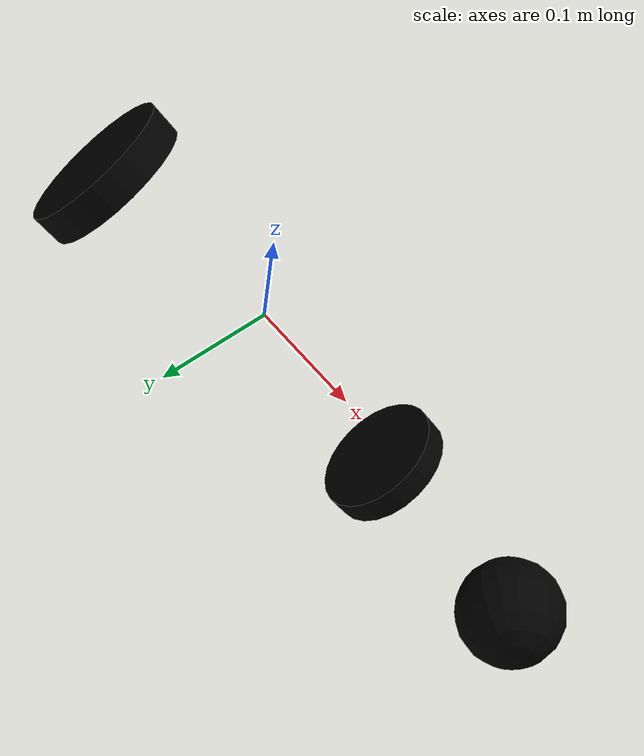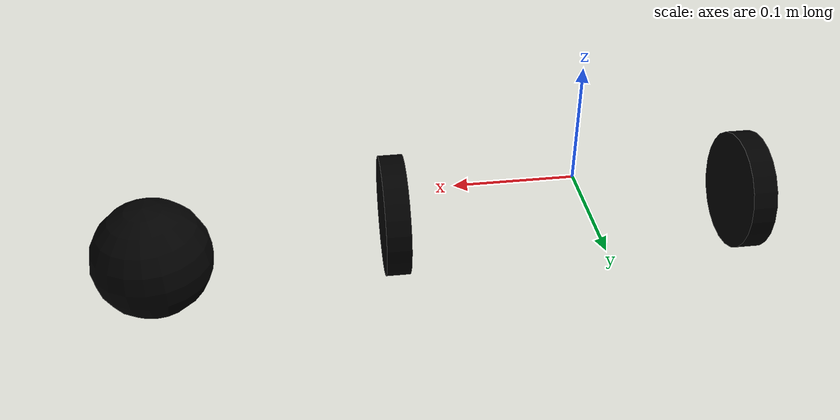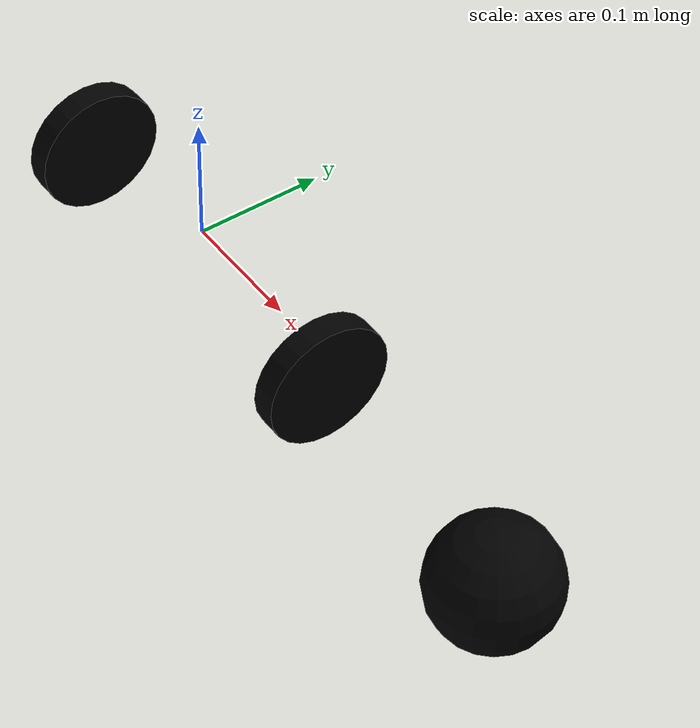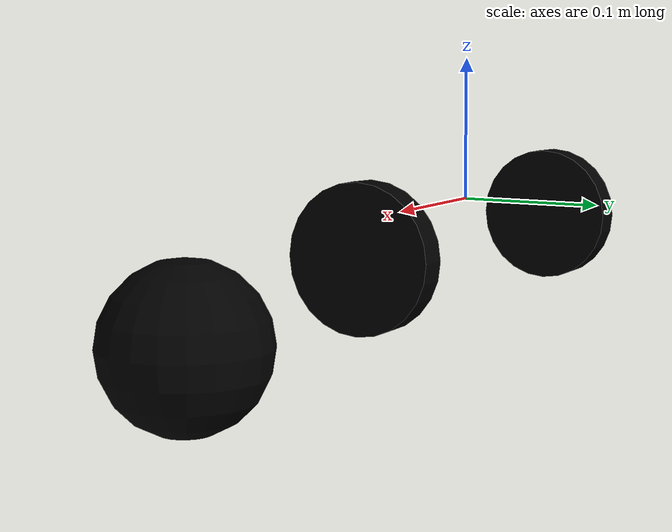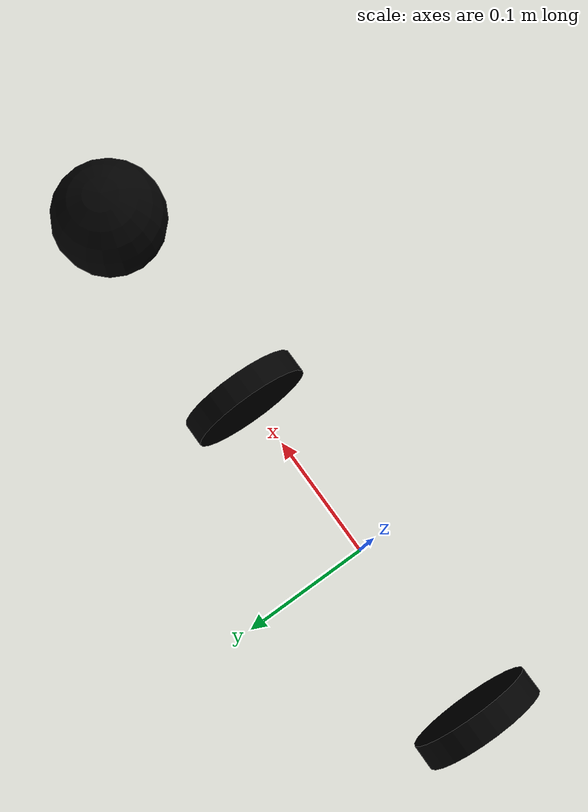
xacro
<?xml version="1.0"?>
<robot name="ti_rlsk_max" xmlns:xacro="http://www.ros.org/wiki/xacro">

  <!-- Definición de materiales -->

    <material name="black">
        <color rgba="0.0 0.0 0.0 1.0"/>
    </material>

    <material name="silver">
        <color rgba="0.8 0.8 0.8 1.0"/>
    </material>

    <link name="base_link">
        <!-- Propiedades inertiales y visuales de la base aquí -->
        ...
        <!-- Inserción del caster front como una sección de colisión y visual -->
        <collision name="caster_front_collision">
            <origin xyz="0.35 0 -0.05" rpy="0 0 0"/> <!-- Posición del caster respecto al centro de la base -->
            <geometry>
            <sphere radius="0.05"/> <!-- Tamaño del caster -->
            </geometry>
        </collision>

        <visual name="caster_front_visual">
            <origin xyz="0.35 0 -0.05" rpy="0 0 0"/> <!-- Asegúrate de que la posición coincida con la de collision -->
            <geometry>
            <sphere radius="0.05"/> <!-- Apariencia visual del caster -->
            </geometry>
            <material name="black"/> <!-- Material del caster -->
        </visual>
    </link>

  <!-- Rueda derecha -->
  <link name="right_wheel_link">
    <visual>
      <geometry>
        <cylinder radius="0.05" length="0.02"/> <!-- Rueda -->
      </geometry>
      <material name="black"/>
    </visual>
    <!-- Añadir elementos inertial y collision si es necesario -->
  </link>

  <!-- Rueda izquierda -->
  <link name="left_wheel_link">
    <visual>
      <geometry>
        <cylinder radius="0.05" length="0.02"/> <!-- Rueda -->
      </geometry>
      <material name="black"/>
    </visual>
    <!-- Añadir elementos inertial y collision si es necesario -->
  </link>

  <!-- Joint fijo para la base -->

  <!-- Joints para las ruedas -->
    <joint name="right_wheel_joint" type="continuous">
    <parent link="base_link"/>
    <child link="right_wheel_link"/>
    <origin xyz="0.15 0 -0.025" rpy="0 1.5708 0"/> <!-- Rueda girada 90 grados en pitch -->
    <axis xyz="0 0 1"/> <!-- Eje de rotación para la rueda derecha -->
    </joint>

    <joint name="left_wheel_joint" type="continuous">
    <parent link="base_link"/>
    <child link="left_wheel_link"/>
    <origin xyz="-0.15 0 -0.025" rpy="0 1.5708 0"/> <!-- Rueda girada 90 grados en pitch -->
    <axis xyz="0 0 1"/> <!-- Eje de rotación para la rueda izquierda -->
    </joint>
</robot>
